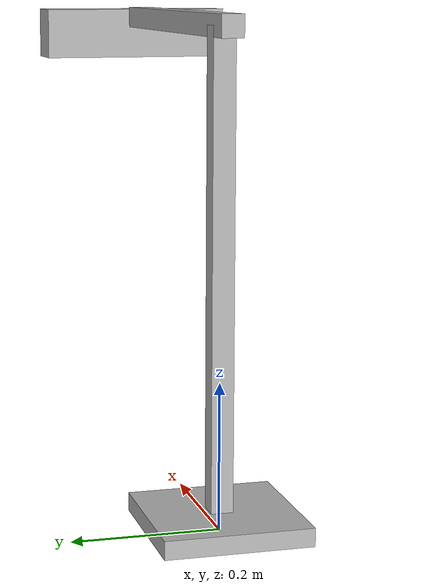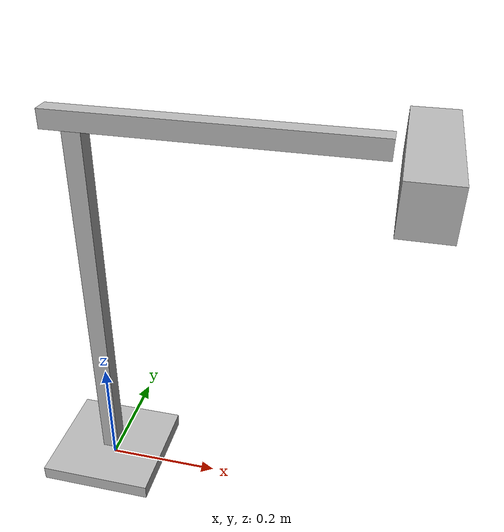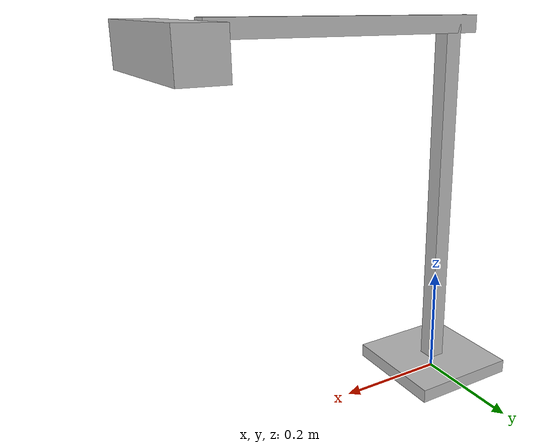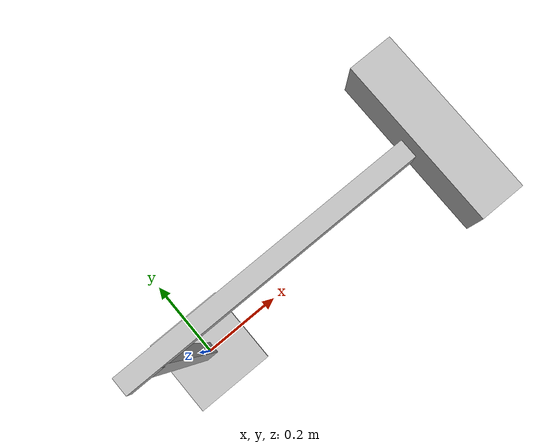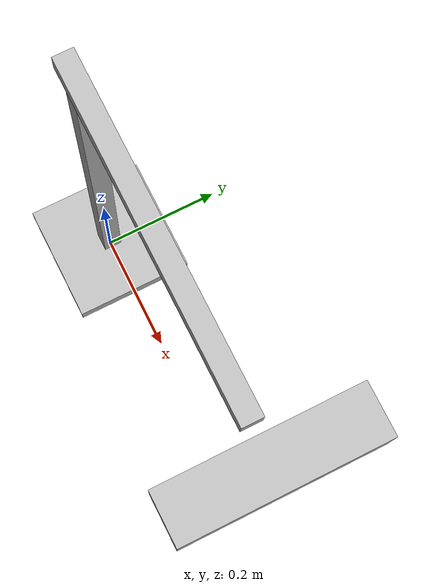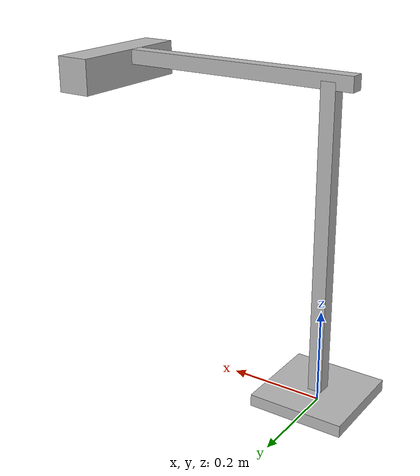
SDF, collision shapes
<?xml version='1.0'?>
<sdf version='1.6'>
  <model name="sensor_stand">
    <static>true</static>
    <!-- static：物理エンジンを無視 -->
    <pose>0 0 .015 0 0 0</pose>

    <link name='base'>
      <collision name='base_collision'>
        <geometry>
          <box>
            <size>.2 .2 .025</size>
          </box>
        </geometry>
      </collision>
      <visual name='base_visual'>
        <geometry>
          <box>
            <size>.2 .2 .025</size>
          </box>
        </geometry>
      </visual>
    </link>

    <joint type="fixed" name="pole_joint">
      <pose></pose>
      <child>pole</child>
      <parent>base</parent>
    </joint>

    <link name="pole">
      <pose>0 0 .325 0 0 0</pose>
      <collision name="pole_collision">
        <geometry>
          <box>
            <size>.03 .03 .65</size>
          </box>
        </geometry>
      </collision>
      <visual name="pole_visual">
        <geometry>
          <box>
            <size>.03 .03 .65</size>
          </box>
        </geometry>
      </visual>
    </link>

    <joint type="fixed" name="pole2_joint">
      <pose></pose>
      <child>pole2</child>
      <parent>pole</parent>
    </joint>

    <link name="pole2">
      <pose>.2 0 .65 0 0 0</pose>
      <collision name="pole2_collision">
        <geometry>
          <box>
            <size>.5 .03 .03</size>
          </box>
        </geometry>
      </collision>
      <visual name="pole2_visual">
        <geometry>
          <box>
            <size>.5 .03 .03</size>
          </box>
        </geometry>
      </visual>
    </link>

    <joint type="fixed" name="sensor_joint">
      <pose></pose>
      <child>sensor</child>
      <parent>pole2</parent>
    </joint>

    <link name="sensor">
      <pose>0.5 0 .625 0 1.57 0</pose>
      <inertial>
        <mass>0.1</mass>
      </inertial>
      <collision name="collision">
        <geometry>
          <box>
            <size>0.073000 0.276000 0.072000</size>
          </box>
        </geometry>
      </collision>
      <visual name="visual">
        <geometry>
          <mesh>
            <uri>model://sensor_stand/meshes/kinect.dae</uri>
          </mesh>
        </geometry>
      </visual>
      <!-- kinect_v2 -->
      <sensor name="camera" type="depth">
        <update_rate>30</update_rate>
        <camera>
          <horizontal_fov>1.2211</horizontal_fov>
          <image>
            <width>512</width>
            <height>424</height>
            <format>L8</format>
          </image>
          <clip>
            <near>0.5</near>
            <far>4.5</far>
          </clip>
        </camera>
        <plugin name="camera_plugin" filename="libgazebo_ros_openni_kinect.so">
          <baseline>0.2</baseline>
          <alwaysOn>true</alwaysOn>
          <updateRate>0.0</updateRate>
          <cameraName>camera_ir</cameraName>
          <depthImageTopicName>/camera/depth/image_raw</depthImageTopicName>
          <depthImageCameraInfoTopicName>/camera/depth/camera_info</depthImageCameraInfoTopicName>
          <pointCloudTopicName>/camera/depth/points</pointCloudTopicName>
          <frameName>camera_link</frameName>
          <pointCloudCutoff>0.5</pointCloudCutoff>
          <pointCloudCutoffMax>3.0</pointCloudCutoffMax>
          <distortionK1>0</distortionK1>
          <distortionK2>0</distortionK2>
          <distortionK3>0</distortionK3>
          <distortionT1>0</distortionT1>
          <distortionT2>0</distortionT2>
          <CxPrime>0</CxPrime>
          <Cx>0</Cx>
          <Cy>0</Cy>
          <focalLength>0</focalLength>
          <hackBaseline>0</hackBaseline>
        </plugin>
      </sensor>

      <sensor name="camera2" type="depth">
      <update_rate>30.0</update_rate>
        <camera>
        <horizontal_fov>1.4671</horizontal_fov>
        <image>
          <width>1920</width>
          <height>1080</height>
          <format>R8G8B8</format>
        </image>
        <clip>
          <near>0.02</near>
          <far>300</far>
        </clip>
      </camera>
      <plugin name="camera_plugin" filename="libgazebo_ros_openni_kinect.so">
          <baseline>0.2</baseline>
          <alwaysOn>true</alwaysOn>
          <updateRate>0.0</updateRate>
          <cameraName>camera2_ir</cameraName>
          <imageTopicName>/camera2/color/image_raw</imageTopicName>
          <cameraInfoTopicName>/camera2/color/camera_info</cameraInfoTopicName>
          <frameName>camera2_link</frameName>
          <pointCloudCutoff>0.5</pointCloudCutoff>
          <pointCloudCutoffMax>3.0</pointCloudCutoffMax>
          <distortionK1>0</distortionK1>
          <distortionK2>0</distortionK2>
          <distortionK3>0</distortionK3>
          <distortionT1>0</distortionT1>
          <distortionT2>0</distortionT2>
          <CxPrime>0</CxPrime>
          <Cx>0</Cx>
          <Cy>0</Cy>
          <focalLength>0</focalLength>
          <hackBaseline>0</hackBaseline>
        </plugin>
    </sensor>
    </link>
  </model>
</sdf>
